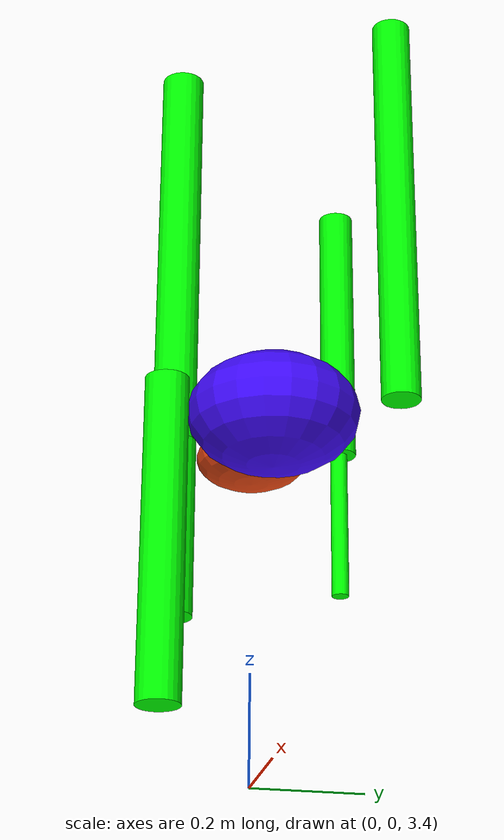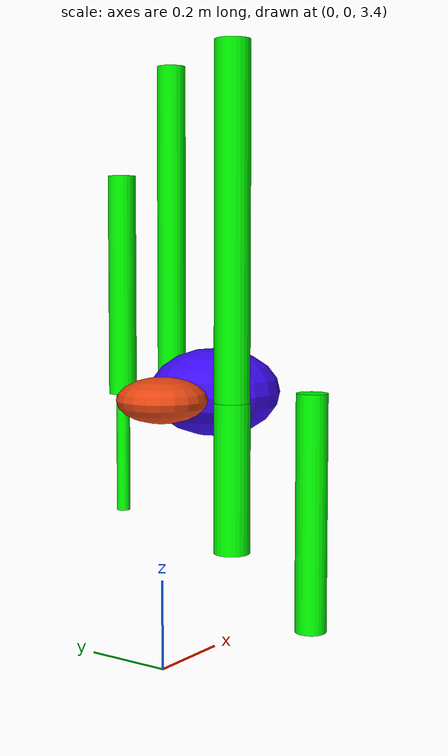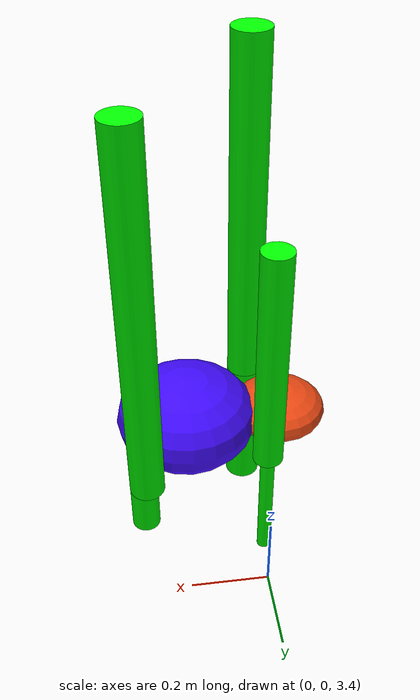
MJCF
<mujoco model="unnamed_model">
  <option timestep="0.01"/>
  <visual>
    <headlight ambient="0.5 0.5 0.5"/>
  </visual>
  <default>
    <default class="/"/>
  </default>
  <worldbody>
    <light name="//unnamed_light_0" class="/" pos="0 0 3" dir="0 0 -1" diffuse="0.5 0.5 0.5"/>
    <geom name="//unnamed_geom_0" class="/" type="plane" size="50 50 0.10000000000000001"/>
    <body name="//unnamed_body_0" pos="0 0 4">
      <joint name="//unnamed_joint_0" class="/" type="free"/>
      <geom name="//unnamed_geom_1" class="/" type="ellipsoid" size="0.10000000000000001 0.10000000000000001 0.050000000000000003" rgba="0.91000000000000003 0.27800000000000002 0.070999999999999994 1" pos="0 0 0"/>
      <geom name="//unnamed_geom_2" class="/" type="ellipsoid" size="0.14999999999999999 0.14999999999999999 0.10000000000000001" rgba="0.247 0.035000000000000003 0.97999999999999998 1" pos="0.20000000000000001 0 0"/>
      <body name="limb1" pos="0.050000000000000003 0.14999999999999999 -0.13367582544930123">
        <geom name="//unnamed_geom_3" class="/" type="cylinder" size="0.01511916311156886 0.13367582544930123" rgba="0 1 0 1"/>
        <joint name="limb1_joint" class="/" type="hinge" pos="0 0 0.13367582544930123" axis="0 1 0" range="-45 45"/>
      </body>
      <body name="limb2" pos="0.050000000000000003 -0.14999999999999999 -0.16291361880383684">
        <geom name="//unnamed_geom_4" class="/" type="cylinder" size="0.039612449527941546 0.16291361880383684" rgba="0 1 0 1"/>
        <joint name="limb2_joint" class="/" type="hinge" pos="0 0 0.16291361880383684" axis="0 1 0" range="-45 45"/>
      </body>
      <body name="limb3" pos="0.29999999999999999 -0.20000000000000001 -0.2773347136204376">
        <geom name="//unnamed_geom_5" class="/" type="cylinder" size="0.036867669527242332 0.2773347136204376" rgba="0 1 0 1"/>
        <joint name="limb3_joint" class="/" type="hinge" pos="0 0 0.2773347136204376" axis="0 1 0" range="-45 45"/>
      </body>
      <body name="back_limb1" pos="0.050000000000000003 0.14999999999999999 0.24495513926091031">
        <geom name="//unnamed_geom_6" class="/" type="cylinder" size="0.031043321297787453 0.24495513926091031" rgba="0 1 0 1"/>
        <joint name="back_limb1_joint" class="/" type="hinge" pos="0 0 -0.24495513926091031" axis="0 1 0" range="-45 45"/>
      </body>
      <body name="back_limb2" pos="0.050000000000000003 -0.14999999999999999 0.38147010255061975">
        <geom name="//unnamed_geom_7" class="/" type="cylinder" size="0.038930760684015769 0.38147010255061975" rgba="0 1 0 1"/>
        <joint name="back_limb2_joint" class="/" type="hinge" pos="0 0 -0.38147010255061975" axis="0 1 0" range="-45 45"/>
      </body>
      <body name="back_limb3" pos="0.29999999999999999 0.20000000000000001 0.38164380094250439">
        <geom name="//unnamed_geom_8" class="/" type="cylinder" size="0.034348568067875639 0.38164380094250439" rgba="0 1 0 1"/>
        <joint name="back_limb3_joint" class="/" type="hinge" pos="0 0 -0.38164380094250439" axis="0 1 0" range="-45 45"/>
      </body>
    </body>
  </worldbody>
  <actuator>
    <motor name="motor_limb1_joint" class="/" ctrllimited="true" ctrlrange="-45 45" gear="1" joint="limb1_joint"/>
    <motor name="motor_limb2_joint" class="/" ctrllimited="true" ctrlrange="-45 45" gear="1" joint="limb2_joint"/>
    <motor name="motor_limb3_joint" class="/" ctrllimited="true" ctrlrange="-45 45" gear="1" joint="limb3_joint"/>
    <motor name="motor_back_back_limb1_joint" class="/" ctrllimited="true" ctrlrange="-45 45" gear="1" joint="back_limb1_joint"/>
    <motor name="motor_back_back_limb2_joint" class="/" ctrllimited="true" ctrlrange="-45 45" gear="1" joint="back_limb2_joint"/>
    <motor name="motor_back_back_limb3_joint" class="/" ctrllimited="true" ctrlrange="-45 45" gear="1" joint="back_limb3_joint"/>
  </actuator>
</mujoco>
